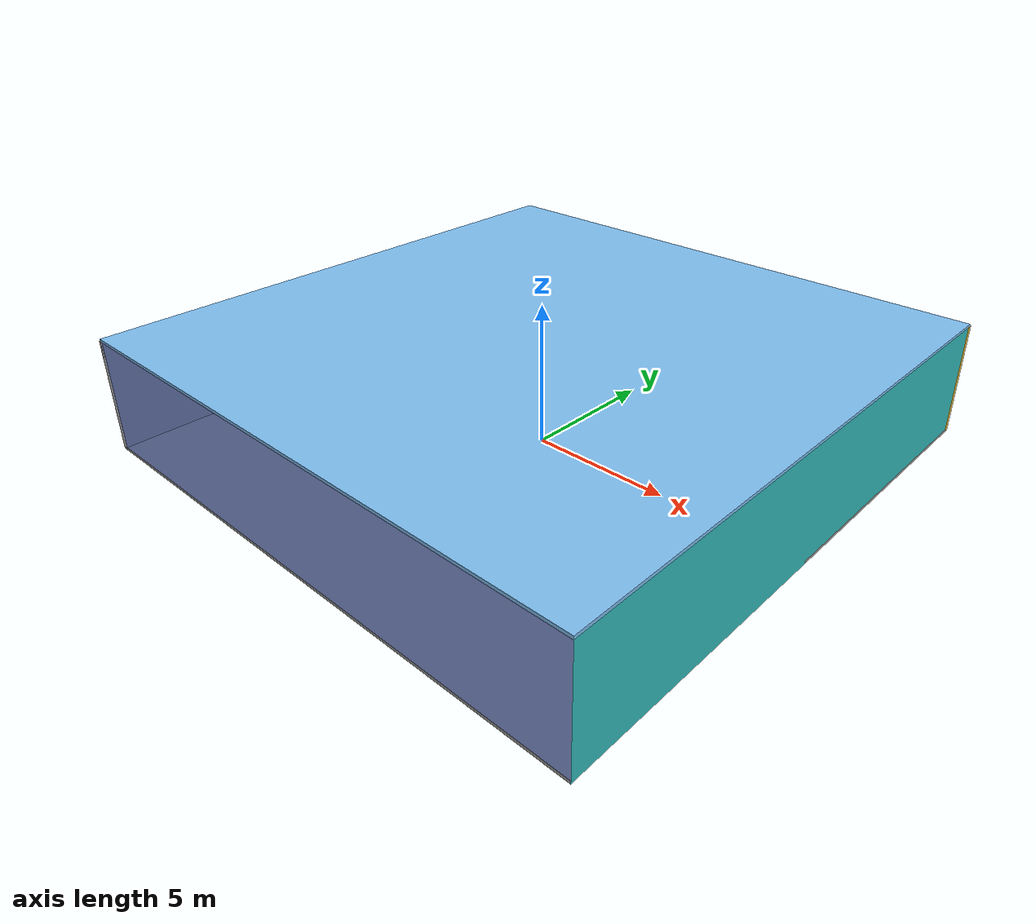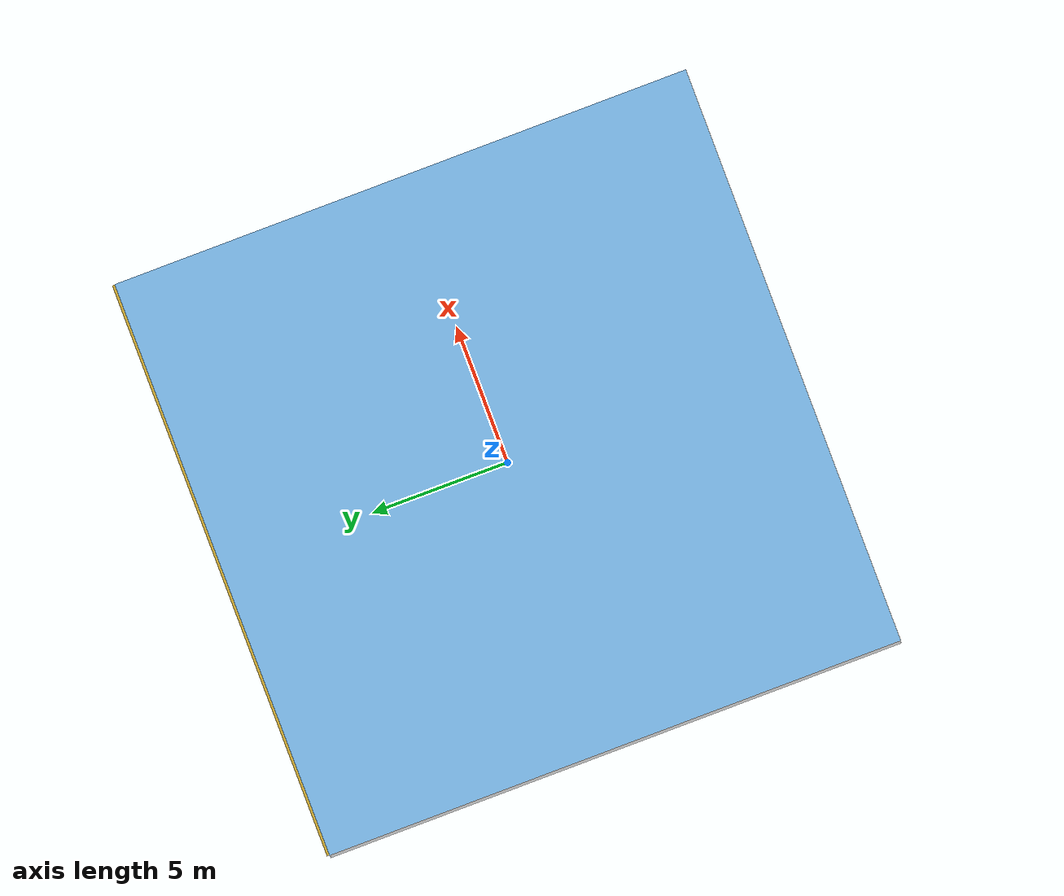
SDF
<sdf version="1.4">
 <world name="default">
  <physics type="ode">
   <max_step_size>0.001</max_step_size>
   <real_time_factor>1</real_time_factor>
   <real_time_update_rate>1000</real_time_update_rate>
   <gravity>0 0 -9.8</gravity>
  </physics>
  <scene><ambient>0.4 0.4 0.4 1</ambient><background>0.7 0.7 0.7 1</background><shadows>1</shadows></scene>
  <model name="Surrounding">
   <static>1</static>
   <link name="Ceiling">
    <collision name="Ceiling_Collision"><geometry><box><size>20 20 0.1</size></box></geometry></collision>
    <visual name="Ceiling_Visual">
     <geometry><box><size>20 20 0.1</size></box></geometry>
     <material>
      <script><uri>file://media/materials/scripts/gazebo.material</uri><name>Gazebo/SkyBlue</name></script>
     </material>
    </visual>
    <pose>0 0 4.05 0 0 0</pose>
   </link>
   <link name="Wall_South">
    <collision name="Wall_South_Collision">
     <geometry><box><size>20 0 4</size></box></geometry>
     <pose>0 0 2 0 -0 0</pose>
    </collision>
    <visual name="Wall_South_Visual">
     <pose>0 0 2 0 -0 0</pose>
     <geometry><box><size>20 0 4</size></box></geometry>
     <material>
      <script><uri>file://media/materials/scripts/gazebo.material</uri><name>Gazebo/BlueTransparent</name></script>
     </material>
    </visual>
    <velocity_decay><linear>0</linear><angular>0</angular></velocity_decay>
    <pose>0 -10 0 0 -0 0</pose>
   </link>
   <link name="Wall_East">
    <collision name="Wall_21_Collision">
     <geometry><box><size>20 0 4</size></box></geometry>
     <pose>0 0 2 0 -0 0</pose>
    </collision>
    <visual name="Wall_21_Visual">
     <pose>0 0 2 0 -0 0</pose>
     <geometry><box><size>20 0 4</size></box></geometry>
     <material>
      <script><uri>file://media/materials/scripts/gazebo.material</uri><name>Gazebo/TurquoiseGlow</name></script>
     </material>
    </visual>
    <velocity_decay><linear>0</linear><angular>0</angular></velocity_decay>
    <pose>10 0 0 0 -0 1.5708</pose>
   </link>
   <link name="Wall_North">
    <collision name="Wall_22_Collision">
     <geometry><box><size>20 0.2 4</size></box></geometry>
     <pose>0 0 2 0 -0 0</pose>
    </collision>
    <visual name="Wall_22_Visual">
     <pose>0 0 2 0 -0 0</pose>
     <geometry><box><size>20 0.2 4</size></box></geometry>
     <material>
      <script><uri>file://media/materials/scripts/gazebo.material</uri><name>Gazebo/Gold</name></script>
     </material>
    </visual>
    <velocity_decay><linear>0</linear><angular>0</angular></velocity_decay>
    <pose>0 10 0 0 -0 0</pose>
   </link>
   <link name="Wall_West">
    <collision name="Wall_23_Collision">
     <geometry><box><size>20 0.2 4</size></box></geometry>
     <pose>0 0 2 0 -0 0</pose>
    </collision>
    <visual name="Wall_23_Visual">
     <pose>0 0 2 0 -0 0</pose>
     <geometry><box><size>20 0.2 4</size></box></geometry>
     <material>
      <script><uri>file://media/materials/scripts/gazebo.material</uri><name>Gazebo/Pioneer2Body</name></script>
     </material>
    </visual>
    <velocity_decay><linear>0</linear><angular>0</angular></velocity_decay>
    <pose>-10 0 0 0 0 -1.5708</pose>
   </link>
   <link name="Ground_link">
    <collision name="collision">
     <pose>0 0 .05 0 -0 0</pose>
     <geometry><box><size>20 20 0.1</size></box></geometry>
    </collision>
    <visual name="visual">
     <pose>0 0 .05 0 -0 0</pose>
     <geometry><box><size>20 20 0.1</size></box></geometry>
     <material>
      <script><uri>file://media/materials/scripts/gazebo.material</uri><name>Gazebo/Grey</name></script>
     </material>
    </visual>
   </link>
   <static>1</static>
  </model>
  <spherical_coordinates>
   <surface_model>EARTH_WGS84</surface_model>
   <latitude_deg>0</latitude_deg>
   <longitude_deg>0</longitude_deg>
   <elevation>0</elevation>
   <heading_deg>0</heading_deg>
  </spherical_coordinates>
  <light name="lightball_0" type="diffuse">
   <diffuse>0.8 0.8 0.8 1</diffuse>
   <specular>0.2 0.2 0.2 1</specular>
   <attenuation>
    <range>100</range>
    <constant>0.7</constant>
    <linear>0.01</linear>
    <quadratic>0.001</quadratic>
   </attenuation>
   <direction>-0.5 0.1 -0.9</direction>
   <pose>-5.67338782842 7.87105592283 2.4295224457 0 0 0</pose>
  </light>
  <light name="lightball_1" type="diffuse">
   <diffuse>0.8 0.8 0.8 1</diffuse>
   <specular>0.2 0.2 0.2 1</specular>
   <attenuation>
    <range>100</range>
    <constant>0.7</constant>
    <linear>0.01</linear>
    <quadratic>0.001</quadratic>
   </attenuation>
   <direction>-0.5 0.1 -0.9</direction>
   <pose>-6.44515464855 -2.79652159882 3.50094138479 0 0 0</pose>
  </light>
  <light name="lightball_2" type="diffuse">
   <diffuse>0.8 0.8 0.8 1</diffuse>
   <specular>0.2 0.2 0.2 1</specular>
   <attenuation>
    <range>100</range>
    <constant>0.7</constant>
    <linear>0.01</linear>
    <quadratic>0.001</quadratic>
   </attenuation>
   <direction>-0.5 0.1 -0.9</direction>
   <pose>1.58062305868 -0.86968941267 1.85109990668 0 0 0</pose>
  </light>
  <light name="lightball_3" type="diffuse">
   <diffuse>0.8 0.8 0.8 1</diffuse>
   <specular>0.2 0.2 0.2 1</specular>
   <attenuation>
    <range>100</range>
    <constant>0.7</constant>
    <linear>0.01</linear>
    <quadratic>0.001</quadratic>
   </attenuation>
   <direction>-0.5 0.1 -0.9</direction>
   <pose>-0.461866815327 -8.2468528188 2.34400456327 0 0 0</pose>
  </light>
  <light name="lightball_4" type="diffuse">
   <diffuse>0.8 0.8 0.8 1</diffuse>
   <specular>0.2 0.2 0.2 1</specular>
   <attenuation>
    <range>100</range>
    <constant>0.7</constant>
    <linear>0.01</linear>
    <quadratic>0.001</quadratic>
   </attenuation>
   <direction>-0.5 0.1 -0.9</direction>
   <pose>-9.60633459811 9.7993893135 1.04251574067 0 0 0</pose>
  </light>
  <light name="lightball_5" type="diffuse">
   <diffuse>0.8 0.8 0.8 1</diffuse>
   <specular>0.2 0.2 0.2 1</specular>
   <attenuation>
    <range>100</range>
    <constant>0.7</constant>
    <linear>0.01</linear>
    <quadratic>0.001</quadratic>
   </attenuation>
   <direction>-0.5 0.1 -0.9</direction>
   <pose>-0.439892992073 -6.05023905288 2.74585956898 0 0 0</pose>
  </light>
  <light name="lightball_6" type="diffuse">
   <diffuse>0.8 0.8 0.8 1</diffuse>
   <specular>0.2 0.2 0.2 1</specular>
   <attenuation>
    <range>100</range>
    <constant>0.7</constant>
    <linear>0.01</linear>
    <quadratic>0.001</quadratic>
   </attenuation>
   <direction>-0.5 0.1 -0.9</direction>
   <pose>-1.6693257507 -4.86827974655 2.01028751905 0 0 0</pose>
  </light>
  <light name="lightball_7" type="diffuse">
   <diffuse>0.8 0.8 0.8 1</diffuse>
   <specular>0.2 0.2 0.2 1</specular>
   <attenuation>
    <range>100</range>
    <constant>0.7</constant>
    <linear>0.01</linear>
    <quadratic>0.001</quadratic>
   </attenuation>
   <direction>-0.5 0.1 -0.9</direction>
   <pose>-0.720847846904 0.333721397039 3.20093685384 0 0 0</pose>
  </light>
  <light name="lightball_8" type="diffuse">
   <diffuse>0.8 0.8 0.8 1</diffuse>
   <specular>0.2 0.2 0.2 1</specular>
   <attenuation>
    <range>100</range>
    <constant>0.7</constant>
    <linear>0.01</linear>
    <quadratic>0.001</quadratic>
   </attenuation>
   <direction>-0.5 0.1 -0.9</direction>
   <pose>-3.83732436804 -7.94371276887 3.17262537465 0 0 0</pose>
  </light>
  <light name="lightball_9" type="diffuse">
   <diffuse>0.8 0.8 0.8 1</diffuse>
   <specular>0.2 0.2 0.2 1</specular>
   <attenuation>
    <range>100</range>
    <constant>0.7</constant>
    <linear>0.01</linear>
    <quadratic>0.001</quadratic>
   </attenuation>
   <direction>-0.5 0.1 -0.9</direction>
   <pose>1.52968028678 -7.46082875481 1.91855369372 0 0 0</pose>
  </light>
  <light name="lightball_10" type="diffuse">
   <diffuse>0.8 0.8 0.8 1</diffuse>
   <specular>0.2 0.2 0.2 1</specular>
   <attenuation>
    <range>100</range>
    <constant>0.7</constant>
    <linear>0.01</linear>
    <quadratic>0.001</quadratic>
   </attenuation>
   <direction>-0.5 0.1 -0.9</direction>
   <pose>-7.11494549617 0.378103106821 0.901609168082 0 0 0</pose>
  </light>
  <light name="lightball_11" type="diffuse">
   <diffuse>0.8 0.8 0.8 1</diffuse>
   <specular>0.2 0.2 0.2 1</specular>
   <attenuation>
    <range>100</range>
    <constant>0.7</constant>
    <linear>0.01</linear>
    <quadratic>0.001</quadratic>
   </attenuation>
   <direction>-0.5 0.1 -0.9</direction>
   <pose>8.0867696648 8.50871782424 2.9664519729 0 0 0</pose>
  </light>
  <light name="lightball_12" type="diffuse">
   <diffuse>0.8 0.8 0.8 1</diffuse>
   <specular>0.2 0.2 0.2 1</specular>
   <attenuation>
    <range>100</range>
    <constant>0.7</constant>
    <linear>0.01</linear>
    <quadratic>0.001</quadratic>
   </attenuation>
   <direction>-0.5 0.1 -0.9</direction>
   <pose>-5.83710949607 -9.54108908352 2.94661311221 0 0 0</pose>
  </light>
  <light name="lightball_13" type="diffuse">
   <diffuse>0.8 0.8 0.8 1</diffuse>
   <specular>0.2 0.2 0.2 1</specular>
   <attenuation>
    <range>100</range>
    <constant>0.7</constant>
    <linear>0.01</linear>
    <quadratic>0.001</quadratic>
   </attenuation>
   <direction>-0.5 0.1 -0.9</direction>
   <pose>-4.76586114248 7.70148633692 3.31112726412 0 0 0</pose>
  </light>
  <include>
   <uri>model://robocup_3Dsim_goal</uri>
   <pose>-8.03094029005 -4.03214746429 0 0 0 0.0660069722861</pose>
  </include>
  <include><uri>model://table</uri><pose>-4.15937246791 7.18007626639 0 0 0 2.41335895749</pose></include>
  <include><uri>model://cabinet</uri><pose>0.783463268307 1.22226499106 0 0 0 0.159439820368</pose></include>
 </world>
</sdf>

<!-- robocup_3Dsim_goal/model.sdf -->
<sdf version="1.5">
  <model name="robocup_3d_goal">
    <static>true</static>
    <link name="left_post">
      <pose>0 1.05 0.45 0 0 0</pose>
      <collision name="collision">
        <geometry>
          <cylinder>
            <radius>0.05</radius>
            <length>0.9</length>
          </cylinder>
        </geometry>
      </collision>
      <visual name="visual">
        <geometry>
          <cylinder>
            <radius>0.05</radius>
            <length>0.9</length>
          </cylinder>
        </geometry>
        <material>
          <script>
            <uri>file://media/materials/scripts/gazebo.material</uri>
            <name>Gazebo/ZincYellow</name>
          </script>
        </material>
      </visual>
    </link>
    <link name="left_support_horiz_lower">
      <pose>0.30 1.05 0.01 0 0 0</pose>
      <collision name="collision">
        <geometry>
          <box>
            <size>0.50 0.02 0.02</size>
          </box>
        </geometry>
      </collision>
      <visual name="visual">
        <geometry>
          <box>
            <size>0.50 0.02 0.02</size>
          </box>
        </geometry>
        <material>
          <script>
            <uri>file://media/materials/scripts/gazebo.material</uri>
            <name>Gazebo/White</name>
          </script>
        </material>
      </visual>
    </link>
    <link name="left_support_horiz_upper">
      <pose>0.30 1.05 0.79 0 0 0</pose>
      <collision name="collision">
        <geometry>
          <box>
            <size>0.50 0.02 0.02</size>
          </box>
        </geometry>
      </collision>
      <visual name="visual">
        <geometry>
          <box>
            <size>0.50 0.02 0.02</size>
          </box>
        </geometry>
        <material>
          <script>
            <uri>file://media/materials/scripts/gazebo.material</uri>
            <name>Gazebo/White</name>
          </script>
        </material>
      </visual>
    </link>
    <link name="left_support_vertical">
      <pose>0.56 1.05 0.4 0 1.5708 0</pose>
      <collision name="collision">
        <geometry>
          <box>
            <size>0.80 0.02 0.02</size>
          </box>
        </geometry>
      </collision>
      <visual name="visual">
        <geometry>
          <box>
            <size>0.80 0.02 0.02</size>
          </box>
        </geometry>
        <material>
          <script>
            <uri>file://media/materials/scripts/gazebo.material</uri>
            <name>Gazebo/White</name>
          </script>
        </material>
      </visual>
    </link>
    <link name="right_support_horiz_lower">
      <pose>0.30 -1.05 0.01 0 0 0</pose>
      <collision name="collision">
        <geometry>
          <box>
            <size>0.50 0.02 0.02</size>
          </box>
        </geometry>
      </collision>
      <visual name="visual">
        <geometry>
          <box>
            <size>0.50 0.02 0.02</size>
          </box>
        </geometry>
        <material>
          <script>
            <uri>file://media/materials/scripts/gazebo.material</uri>
            <name>Gazebo/White</name>
          </script>
        </material>
      </visual>
    </link>
    <link name="right_support_horiz_upper">
      <pose>0.30 -1.05 0.79 0 0 0</pose>
      <collision name="collision">
        <geometry>
          <box>
            <size>0.50 0.02 0.02</size>
          </box>
        </geometry>
      </collision>
      <visual name="visual">
        <geometry>
          <box>
            <size>0.50 0.02 0.02</size>
          </box>
        </geometry>
        <material>
          <script>
            <uri>file://media/materials/scripts/gazebo.material</uri>
            <name>Gazebo/White</name>
          </script>
        </material>
      </visual>
    </link>
    <link name="right_support_vertical">
      <pose>0.56 -1.05 0.4 0 1.5708 0</pose>
      <collision name="collision">
        <geometry>
          <box>
            <size>0.80 0.02 0.02</size>
          </box>
        </geometry>
      </collision>
      <visual name="visual">
        <geometry>
          <box>
            <size>0.80 0.02 0.02</size>
          </box>
        </geometry>
        <material>
          <script>
            <uri>file://media/materials/scripts/gazebo.material</uri>
            <name>Gazebo/White</name>
          </script>
        </material>
      </visual>
    </link>
    <link name="center_support_horiz_lower">
      <pose>0.56 0 0.01 0 1.5708 0</pose>
      <collision name="collision">
        <geometry>
          <box>
            <size>0.02 2.08 0.02</size>
          </box>
        </geometry>
      </collision>
      <visual name="visual">
        <geometry>
          <box>
            <size>0.02 2.08 0.02</size>
          </box>
        </geometry>
        <material>
          <script>
            <uri>file://media/materials/scripts/gazebo.material</uri>
            <name>Gazebo/White</name>
          </script>
        </material>
      </visual>
    </link>
    <link name="center_support_horiz_upper">
      <pose>0.56 0 0.79 0 1.5708 0</pose>
      <collision name="collision">
        <geometry>
          <box>
            <size>0.02 2.08 0.02</size>
          </box>
        </geometry>
      </collision>
      <visual name="visual">
        <geometry>
          <box>
            <size>0.02 2.08 0.02</size>
          </box>
        </geometry>
        <material>
          <script>
            <uri>file://media/materials/scripts/gazebo.material</uri>
            <name>Gazebo/White</name>
          </script>
        </material>
      </visual>
    </link>
    <link name="right_post">
      <pose>0 -1.05 0.45 0 0 0</pose>
      <collision name="collision">
        <geometry>
          <cylinder>
            <radius>0.05</radius>
            <length>0.9</length>
          </cylinder>
        </geometry>
      </collision>
      <visual name="visual">
        <geometry>
          <cylinder>
            <radius>0.05</radius>
            <length>0.9</length>
          </cylinder>
        </geometry>
        <material>
          <script>
            <uri>file://media/materials/scripts/gazebo.material</uri>
            <name>Gazebo/ZincYellow</name>
          </script>
        </material>
      </visual>
    </link>
    <link name="crossbar">
      <pose>0 0 0.85 1.57 1.57 0</pose>
      <collision name="collision">
        <geometry>
          <cylinder>
            <radius>0.05</radius>
            <length>2.0</length>
          </cylinder>
        </geometry>
      </collision>
      <visual name="visual">
        <geometry>
          <cylinder>
            <radius>0.05</radius>
            <length>2.0</length>
          </cylinder>
        </geometry>
        <material>
          <script>
            <uri>file://media/materials/scripts/gazebo.material</uri>
            <name>Gazebo/ZincYellow</name>
          </script>
        </material>
      </visual>
    </link>
    <link name="center_net">
      <pose>0.56 0 0.40 0 0 0</pose>
      <collision name="collision">
        <geometry>
          <box>
            <size>0.01 2.1 0.80</size>
          </box>
        </geometry>
      </collision>
      <visual name="visual">
        <geometry>
          <box>
            <size>0.01 2.1 0.80</size>
          </box>
        </geometry>
        <material>
          <script>
            <uri>model://../model_source/models/robocup09_spl_field/materials/scripts/</uri>
            <uri>model://../model_source/models/robocup09_spl_field/materials/textures/</uri>
            <name>RoboCup/Net</name>
          </script>
        </material>
      </visual>
    </link>
    <link name="left_net">
      <pose>0.30 1.05 0.40 0 0 0</pose>
      <collision name="collision">
        <geometry>
          <box>
            <size>0.50 0.01 0.76</size>
          </box>
        </geometry>
      </collision>
      <visual name="visual">
        <geometry>
          <box>
            <size>0.50 0.01 0.76</size>
          </box>
        </geometry>
        <material>
          <script>
            <uri>model://../model_source/models/robocup09_spl_field/materials/scripts/</uri>
            <uri>model://../model_source/models/robocup09_spl_field/materials/textures/</uri>
            <name>RoboCup/Net</name>
          </script>
        </material>
      </visual>
    </link>
    <link name="right_net">
      <pose>0.30 -1.05 0.40 0 0 0</pose>
      <collision name="collision">
        <geometry>
          <box>
            <size>0.50 0.01 0.76</size>
          </box>
        </geometry>
      </collision>
      <visual name="visual">
        <geometry>
          <box>
            <size>0.50 0.01 0.76</size>
          </box>
        </geometry>
        <material>
          <script>
            <uri>model://../model_source/models/robocup09_spl_field/materials/scripts/</uri>
            <uri>model://../model_source/models/robocup09_spl_field/materials/textures/</uri>
            <name>RoboCup/Net</name>
          </script>
        </material>
      </visual>
    </link>
  </model>
</sdf>

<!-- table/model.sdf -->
<sdf version="1.5">
  <model name="table">
    <static>true</static>
    <link name="link">
      <collision name="surface">
        <pose>0 0 1.0 0 0 0</pose>
        <geometry>
          <box>
            <size>1.5 0.8 0.03</size>
          </box>
        </geometry>
        <surface>
          <friction>
            <ode>
              <mu>0.6</mu>
              <mu2>0.6</mu2>
            </ode>
          </friction>
        </surface>
      </collision>
      <visual name="visual1">
        <pose>0 0 1.0 0 0 0</pose>
        <geometry>
          <box>
            <size>1.5 0.8 0.03</size>
          </box>
        </geometry>
        <material>
          <script>
            <uri>model://media/materials/scripts/gazebo.material</uri>
            <name>Gazebo/Wood</name>
          </script>
        </material>
      </visual>
      <collision name="front_left_leg">
        <pose>0.68 0.38 0.5 0 0 0</pose>
        <geometry>
          <cylinder>
            <radius>0.02</radius>
            <length>1.0</length>
          </cylinder>
        </geometry>
      </collision>
      <visual name="front_left_leg">
        <pose>0.68 0.38 0.5 0 0 0</pose>
        <geometry>
          <cylinder>
            <radius>0.02</radius>
            <length>1.0</length>
          </cylinder>
        </geometry>
        <material>
          <script>
            <uri>model://media/materials/scripts/gazebo.material</uri>
            <name>Gazebo/Grey</name>
          </script>
        </material>
      </visual>
      <collision name="front_right_leg">
        <pose>0.68 -0.38 0.5 0 0 0</pose>
        <geometry>
          <cylinder>
            <radius>0.02</radius>
            <length>1.0</length>
          </cylinder>
        </geometry>
      </collision>
      <visual name="front_right_leg">
        <pose>0.68 -0.38 0.5 0 0 0</pose>
        <geometry>
          <cylinder>
            <radius>0.02</radius>
            <length>1.0</length>
          </cylinder>
        </geometry>
        <material>
          <script>
            <uri>model://media/materials/scripts/gazebo.material</uri>
            <name>Gazebo/Grey</name>
          </script>
        </material>
      </visual>
      <collision name="back_right_leg">
        <pose>-0.68 -0.38 0.5 0 0 0</pose>
        <geometry>
          <cylinder>
            <radius>0.02</radius>
            <length>1.0</length>
          </cylinder>
        </geometry>
      </collision>
      <visual name="back_right_leg">
        <pose>-0.68 -0.38 0.5 0 0 0</pose>
        <geometry>
          <cylinder>
            <radius>0.02</radius>
            <length>1.0</length>
          </cylinder>
        </geometry>
        <material>
          <script>
            <uri>model://media/materials/scripts/gazebo.material</uri>
            <name>Gazebo/Grey</name>
          </script>
        </material>
      </visual>
      <collision name="back_left_leg">
        <pose>-0.68 0.38 0.5 0 0 0</pose>
        <geometry>
          <cylinder>
            <radius>0.02</radius>
            <length>1.0</length>
          </cylinder>
        </geometry>
      </collision>
      <visual name="back_left_leg">
        <pose>-0.68 0.38 0.5 0 0 0</pose>
        <geometry>
          <cylinder>
            <radius>0.02</radius>
            <length>1.0</length>
          </cylinder>
        </geometry>
        <material>
          <script>
            <uri>model://media/materials/scripts/gazebo.material</uri>
            <name>Gazebo/Grey</name>
          </script>
        </material>
      </visual>
    </link>
  </model>
</sdf>

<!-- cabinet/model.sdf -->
<sdf version="1.5">
  <model name="cabinet">
    <static>true</static>
    <link name="cabinet_bottom_plate">
      <inertial>
        <pose>0 0 -1 0 0 0</pose>
        <inertia>
          <ixx>2.050000</ixx>
          <ixy>0</ixy>
          <ixz>0</ixz>
          <iyy>2.050000</iyy>
          <iyz>0</iyz>
          <izz>2.050000</izz>
        </inertia>
        <mass>25.000000</mass>
      </inertial>
      <collision name="cabinet_bottom_plate_geom">
        <pose>0 0 0.010000 0 0 0</pose>
        <geometry>
          <box>
            <size>0.450000 0.450000 0.020000</size>
          </box>
        </geometry>
      </collision>
      <visual name="cabinet_bottom_plate_geom_visual">
        <pose>0 0 0.010000 0 0 0</pose>
        <geometry>
          <box>
            <size>0.450000 0.450000 0.020000</size>
          </box>
        </geometry>
        <material>
          <script>
            <uri>model://media/materials/scripts/gazebo.material</uri>
            <name>Gazebo/Wood</name>
          </script>
        </material>
      </visual>
      <collision name="cabinet_bottom_plate_geom_cabinet_back_plate">
        <pose>0.235000 0 0.510000 0 0 0</pose>
        <geometry>
          <box>
            <size>0.020000 0.450000 1.020000</size>
          </box>
        </geometry>
      </collision>
      <visual name="cabinet_bottom_plate_geom_cabinet_back_plate_visual">
        <pose>0.235000 0 0.510000 0 0 0</pose>
        <geometry>
          <box>
            <size>0.020000 0.450000 1.020000</size>
          </box>
        </geometry>
        <material>
          <script>
            <uri>model://media/materials/scripts/gazebo.material</uri>
            <name>Gazebo/Wood</name>
          </script>
        </material>
      </visual>
      <collision name="cabinet_bottom_plate_geom_cabinet_left_plate">
        <pose>0 0.235000 0.510000 0 0 0</pose>
        <geometry>
          <box>
            <size>0.450000 0.020000 1.020000</size>
          </box>
        </geometry>
      </collision>
      <visual name="cabinet_bottom_plate_geom_cabinet_left_plate_visual">
        <pose>0 0.235000 0.510000 0 0 0</pose>
        <geometry>
          <box>
            <size>0.450000 0.020000 1.020000</size>
          </box>
        </geometry>
        <material>
          <script>
            <uri>model://media/materials/scripts/gazebo.material</uri>
            <name>Gazebo/Wood</name>
          </script>
        </material>
      </visual>
      <collision name="cabinet_bottom_plate_geom_cabinet_middle_plate">
        <pose>0 0 0.510000 0 0 0</pose>
        <geometry>
          <box>
            <size>0.450000 0.450000 0.020000</size>
          </box>
        </geometry>
      </collision>
      <visual name="cabinet_bottom_plate_geom_cabinet_middle_plate_visual">
        <pose>0 0 0.510000 0 0 0</pose>
        <geometry>
          <box>
            <size>0.450000 0.450000 0.020000</size>
          </box>
        </geometry>
        <material>
          <script>
            <uri>model://media/materials/scripts/gazebo.material</uri>
            <name>Gazebo/Wood</name>
          </script>
        </material>
      </visual>
      <collision name="cabinet_bottom_plate_geom_cabinet_right_plate">
        <pose>0 -0.235000 0.510000 0 0 0</pose>
        <geometry>
          <box>
            <size>0.450000 0.020000 1.020000</size>
          </box>
        </geometry>
      </collision>
      <visual name="cabinet_bottom_plate_geom_cabinet_right_plate_visual">
        <pose>0 -0.235000 0.510000 0 0 0</pose>
        <geometry>
          <box>
            <size>0.450000 0.020000 1.020000</size>
          </box>
        </geometry>
        <material>
          <script>
            <uri>model://media/materials/scripts/gazebo.material</uri>
            <name>Gazebo/Wood</name>
          </script>
        </material>
      </visual>
      <collision name="cabinet_bottom_plate_geom_cabinet_top_plate">
        <pose>0 0 1.010000 0 0 0</pose>
        <geometry>
          <box>
            <size>0.450000 0.450000 0.020000</size>
          </box>
        </geometry>
      </collision>
      <visual name="cabinet_bottom_plate_geom_cabinet_top_plate_visual">
        <pose>0 0 1.010000 0 0 0</pose>
        <geometry>
          <box>
            <size>0.450000 0.450000 0.020000</size>
          </box>
        </geometry>
        <material>
          <script>
            <uri>model://media/materials/scripts/gazebo.material</uri>
            <name>Gazebo/Wood</name>
          </script>
        </material>
      </visual>
    </link>
  </model>
</sdf>
